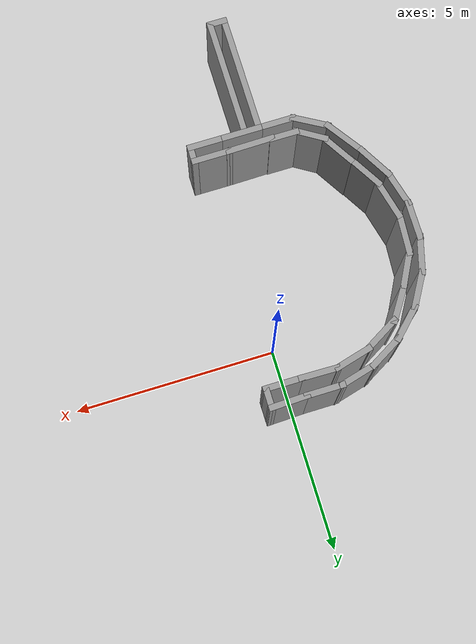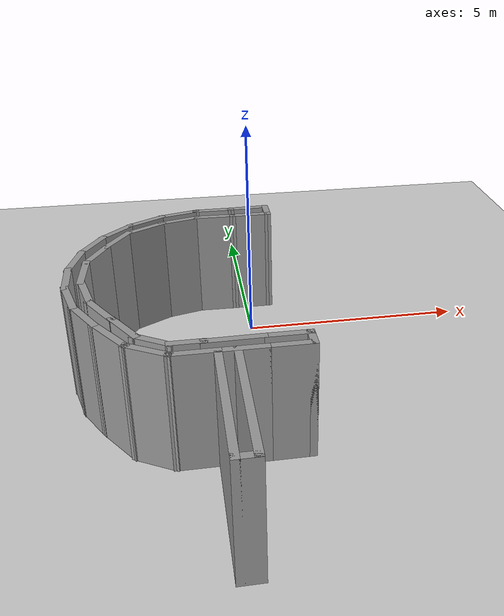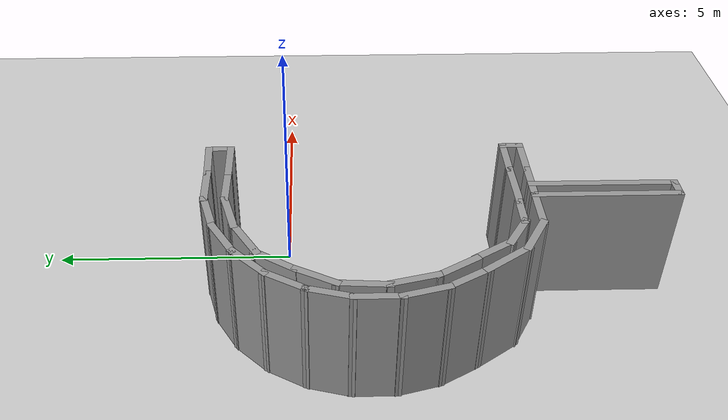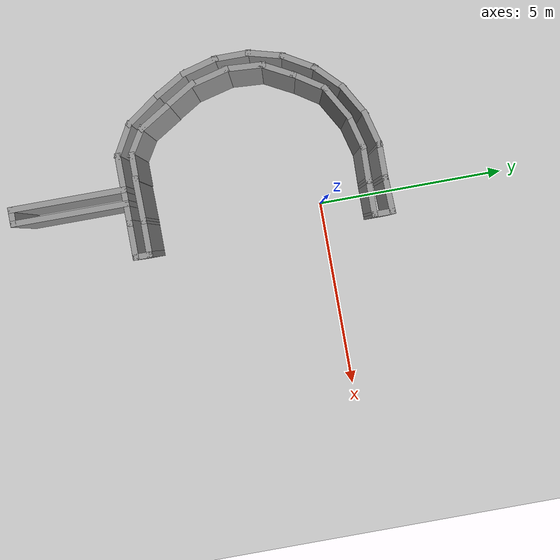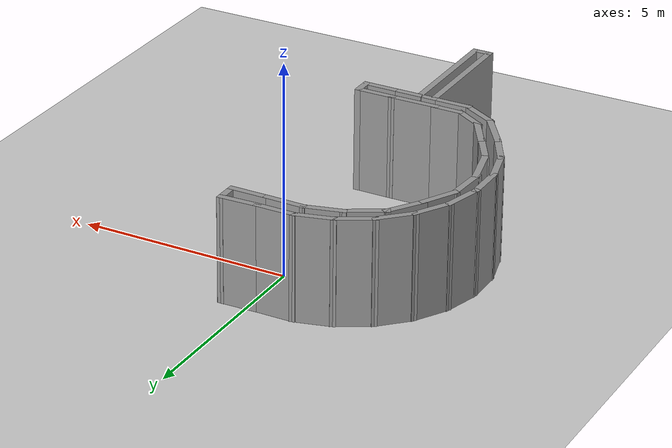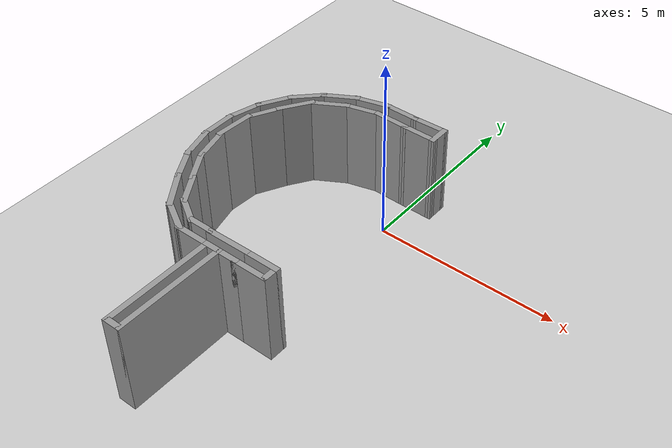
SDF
<?xml version="1.0" ?>
<sdf version="1.4">
  <world name="default">
    <!-- A global light source -->
    <include>
      <uri>model://sun</uri>
    </include>

    <!-- A ground plane -->
    <include>
      <uri>model://ground_plane</uri>
    </include>

    <include>
      <uri>model://model_wall</uri>
    </include>

  </world>
</sdf>

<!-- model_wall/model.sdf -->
<sdf version='1.7'>
  <model name='RI_C_Shape'>
    <pose>-1.67152 -3.04489 0 0 -0 0</pose>
    <link name='Wall_10'>
      <collision name='Wall_10_Collision'>
        <geometry>
          <box>
            <size>0.15 0.15 2.5</size>
          </box>
        </geometry>
        <pose>0 0 1.25 0 -0 0</pose>
      </collision>
      <visual name='Wall_10_Visual'>
        <pose>0 0 1.25 0 -0 0</pose>
        <geometry>
          <box>
            <size>0.15 0.15 2.5</size>
          </box>
        </geometry>
        <material>
          <script>
            <uri>file://media/materials/scripts/gazebo.material</uri>
            <name>Gazebo/Grey</name>
          </script>
          <ambient>1 1 1 1</ambient>
        </material>
        <meta>
          <layer>0</layer>
        </meta>
      </visual>
      <pose>0.558833 4.63649 0 0 -0 0</pose>
    </link>
    <link name='Wall_11'>
      <collision name='Wall_11_Collision'>
        <geometry>
          <box>
            <size>1 0.15 2.5</size>
          </box>
        </geometry>
        <pose>0 0 1.25 0 -0 0</pose>
      </collision>
      <visual name='Wall_11_Visual'>
        <pose>0 0 1.25 0 -0 0</pose>
        <geometry>
          <box>
            <size>1 0.15 2.5</size>
          </box>
        </geometry>
        <material>
          <script>
            <uri>file://media/materials/scripts/gazebo.material</uri>
            <name>Gazebo/Grey</name>
          </script>
          <ambient>1 1 1 1</ambient>
        </material>
        <meta>
          <layer>0</layer>
        </meta>
      </visual>
      <pose>0.148314 4.52649 0 0 -0 -2.87979</pose>
    </link>
    <link name='Wall_12'>
      <collision name='Wall_12_Collision'>
        <geometry>
          <box>
            <size>1 0.15 2.5</size>
          </box>
        </geometry>
        <pose>0 0 1.25 0 -0 0</pose>
      </collision>
      <visual name='Wall_12_Visual'>
        <pose>0 0 1.25 0 -0 0</pose>
        <geometry>
          <box>
            <size>1 0.15 2.5</size>
          </box>
        </geometry>
        <material>
          <script>
            <uri>file://media/materials/scripts/gazebo.material</uri>
            <name>Gazebo/Grey</name>
          </script>
          <ambient>1 1 1 1</ambient>
        </material>
        <meta>
          <layer>0</layer>
        </meta>
      </visual>
      <pose>-0.630265 4.20399 0 0 -0 -2.61799</pose>
    </link>
    <link name='Wall_13'>
      <collision name='Wall_13_Collision'>
        <geometry>
          <box>
            <size>1 0.15 2.5</size>
          </box>
        </geometry>
        <pose>0 0 1.25 0 -0 0</pose>
      </collision>
      <visual name='Wall_13_Visual'>
        <pose>0 0 1.25 0 -0 0</pose>
        <geometry>
          <box>
            <size>1 0.15 2.5</size>
          </box>
        </geometry>
        <material>
          <script>
            <uri>file://media/materials/scripts/gazebo.material</uri>
            <name>Gazebo/Grey</name>
          </script>
          <ambient>1 1 1 1</ambient>
        </material>
        <meta>
          <layer>0</layer>
        </meta>
      </visual>
      <pose>-1.29885 3.69097 0 0 -0 -2.35619</pose>
    </link>
    <link name='Wall_14'>
      <collision name='Wall_14_Collision'>
        <geometry>
          <box>
            <size>1 0.15 2.5</size>
          </box>
        </geometry>
        <pose>0 0 1.25 0 -0 0</pose>
      </collision>
      <visual name='Wall_14_Visual'>
        <pose>0 0 1.25 0 -0 0</pose>
        <geometry>
          <box>
            <size>1 0.15 2.5</size>
          </box>
        </geometry>
        <material>
          <script>
            <uri>file://media/materials/scripts/gazebo.material</uri>
            <name>Gazebo/Grey</name>
          </script>
          <ambient>1 1 1 1</ambient>
        </material>
        <meta>
          <layer>0</layer>
        </meta>
      </visual>
      <pose>-1.81187 3.02239 0 0 -0 -2.0944</pose>
    </link>
    <link name='Wall_15'>
      <collision name='Wall_15_Collision'>
        <geometry>
          <box>
            <size>1 0.15 2.5</size>
          </box>
        </geometry>
        <pose>0 0 1.25 0 -0 0</pose>
      </collision>
      <visual name='Wall_15_Visual'>
        <pose>0 0 1.25 0 -0 0</pose>
        <geometry>
          <box>
            <size>1 0.15 2.5</size>
          </box>
        </geometry>
        <material>
          <script>
            <uri>file://media/materials/scripts/gazebo.material</uri>
            <name>Gazebo/Grey</name>
          </script>
          <ambient>1 1 1 1</ambient>
        </material>
        <meta>
          <layer>0</layer>
        </meta>
      </visual>
      <pose>-2.13436 2.24381 0 0 -0 -1.8326</pose>
    </link>
    <link name='Wall_16'>
      <collision name='Wall_16_Collision'>
        <geometry>
          <box>
            <size>1 0.15 2.5</size>
          </box>
        </geometry>
        <pose>0 0 1.25 0 -0 0</pose>
      </collision>
      <visual name='Wall_16_Visual'>
        <pose>0 0 1.25 0 -0 0</pose>
        <geometry>
          <box>
            <size>1 0.15 2.5</size>
          </box>
        </geometry>
        <material>
          <script>
            <uri>file://media/materials/scripts/gazebo.material</uri>
            <name>Gazebo/Grey</name>
          </script>
          <ambient>1 1 1 1</ambient>
        </material>
        <meta>
          <layer>0</layer>
        </meta>
      </visual>
      <pose>-2.24436 1.40829 0 0 -0 -1.5708</pose>
    </link>
    <link name='Wall_18'>
      <collision name='Wall_18_Collision'>
        <geometry>
          <box>
            <size>1 0.15 2.5</size>
          </box>
        </geometry>
        <pose>0 0 1.25 0 -0 0</pose>
      </collision>
      <visual name='Wall_18_Visual'>
        <pose>0 0 1.25 0 -0 0</pose>
        <geometry>
          <box>
            <size>1 0.15 2.5</size>
          </box>
        </geometry>
        <material>
          <script>
            <uri>file://media/materials/scripts/gazebo.material</uri>
            <name>Gazebo/Grey</name>
          </script>
          <ambient>1 1 1 1</ambient>
        </material>
        <meta>
          <layer>0</layer>
        </meta>
      </visual>
      <pose>-2.13436 0.572773 0 0 -0 -1.309</pose>
    </link>
    <link name='Wall_19'>
      <collision name='Wall_19_Collision'>
        <geometry>
          <box>
            <size>1 0.15 2.5</size>
          </box>
        </geometry>
        <pose>0 0 1.25 0 -0 0</pose>
      </collision>
      <visual name='Wall_19_Visual'>
        <pose>0 0 1.25 0 -0 0</pose>
        <geometry>
          <box>
            <size>1 0.15 2.5</size>
          </box>
        </geometry>
        <material>
          <script>
            <uri>file://media/materials/scripts/gazebo.material</uri>
            <name>Gazebo/Grey</name>
          </script>
          <ambient>1 1 1 1</ambient>
        </material>
        <meta>
          <layer>0</layer>
        </meta>
      </visual>
      <pose>-1.81187 -0.205806 0 0 -0 -1.0472</pose>
    </link>
    <link name='Wall_24'>
      <collision name='Wall_24_Collision'>
        <geometry>
          <box>
            <size>1 0.15 2.5</size>
          </box>
        </geometry>
        <pose>0 0 1.25 0 -0 0</pose>
      </collision>
      <visual name='Wall_24_Visual'>
        <pose>0 0 1.25 0 -0 0</pose>
        <geometry>
          <box>
            <size>1 0.15 2.5</size>
          </box>
        </geometry>
        <material>
          <script>
            <uri>file://media/materials/scripts/gazebo.material</uri>
            <name>Gazebo/Grey</name>
          </script>
          <ambient>1 1 1 1</ambient>
        </material>
        <meta>
          <layer>0</layer>
        </meta>
      </visual>
      <pose>0.983833 -1.8199 0 0 -0 0</pose>
    </link>
    <link name='Wall_27'>
      <collision name='Wall_27_Collision'>
        <geometry>
          <box>
            <size>1 0.15 2.5</size>
          </box>
        </geometry>
        <pose>0 0 1.25 0 -0 0</pose>
      </collision>
      <visual name='Wall_27_Visual'>
        <pose>0 0 1.25 0 -0 0</pose>
        <geometry>
          <box>
            <size>1 0.15 2.5</size>
          </box>
        </geometry>
        <material>
          <script>
            <uri>file://media/materials/scripts/gazebo.material</uri>
            <name>Gazebo/Grey</name>
          </script>
          <ambient>1 1 1 1</ambient>
        </material>
        <meta>
          <layer>0</layer>
        </meta>
      </visual>
      <pose>0.133833 -1.8199 0 0 -0 3.14159</pose>
    </link>
    <link name='Wall_28'>
      <collision name='Wall_28_Collision'>
        <geometry>
          <box>
            <size>1 0.15 2.5</size>
          </box>
        </geometry>
        <pose>0 0 1.25 0 -0 0</pose>
      </collision>
      <visual name='Wall_28_Visual'>
        <pose>0 0 1.25 0 -0 0</pose>
        <geometry>
          <box>
            <size>1 0.15 2.5</size>
          </box>
        </geometry>
        <material>
          <script>
            <uri>file://media/materials/scripts/gazebo.material</uri>
            <name>Gazebo/Grey</name>
          </script>
          <ambient>1 1 1 1</ambient>
        </material>
        <meta>
          <layer>0</layer>
        </meta>
      </visual>
      <pose>-0.659228 -1.6074 0 0 -0 2.61799</pose>
    </link>
    <link name='Wall_29'>
      <collision name='Wall_29_Collision'>
        <geometry>
          <box>
            <size>1.15069 0.15 2.5</size>
          </box>
        </geometry>
        <pose>0 0 1.25 0 -0 0</pose>
      </collision>
      <visual name='Wall_29_Visual'>
        <pose>0 0 1.25 0 -0 0</pose>
        <geometry>
          <box>
            <size>1.15069 0.15 2.5</size>
          </box>
        </geometry>
        <material>
          <script>
            <uri>file://media/materials/scripts/gazebo.material</uri>
            <name>Gazebo/Grey</name>
          </script>
          <ambient>1 1 1 1</ambient>
        </material>
        <meta>
          <layer>0</layer>
        </meta>
      </visual>
      <pose>-1.31333 -0.984386 0 0 -0 2.17935</pose>
    </link>
    <link name='Wall_31'>
      <collision name='Wall_31_Collision'>
        <geometry>
          <box>
            <size>1 0.15 2.5</size>
          </box>
        </geometry>
        <pose>0 0 1.25 0 -0 0</pose>
      </collision>
      <visual name='Wall_31_Visual'>
        <pose>0 0 1.25 0 -0 0</pose>
        <geometry>
          <box>
            <size>1 0.15 2.5</size>
          </box>
        </geometry>
        <material>
          <script>
            <uri>file://media/materials/scripts/gazebo.material</uri>
            <name>Gazebo/Grey</name>
          </script>
          <ambient>1 1 1 1</ambient>
        </material>
        <meta>
          <layer>0</layer>
        </meta>
      </visual>
      <pose>1.83383 -1.8199 0 0 -0 0</pose>
    </link>
    <link name='Wall_33'>
      <collision name='Wall_33_Collision'>
        <geometry>
          <box>
            <size>0.5 0.15 2.5</size>
          </box>
        </geometry>
        <pose>0 0 1.25 0 -0 0</pose>
      </collision>
      <visual name='Wall_33_Visual'>
        <pose>0 0 1.25 0 -0 0</pose>
        <geometry>
          <box>
            <size>0.5 0.15 2.5</size>
          </box>
        </geometry>
        <material>
          <script>
            <uri>file://media/materials/scripts/gazebo.material</uri>
            <name>Gazebo/Grey</name>
          </script>
          <ambient>1 1 1 1</ambient>
        </material>
        <meta>
          <layer>0</layer>
        </meta>
      </visual>
      <pose>2.25883 -1.6449 0 0 -0 1.5708</pose>
    </link>
    <link name='Wall_34'>
      <collision name='Wall_34_Collision'>
        <geometry>
          <box>
            <size>1 0.15 2.5</size>
          </box>
        </geometry>
        <pose>0 0 1.25 0 -0 0</pose>
      </collision>
      <visual name='Wall_34_Visual'>
        <pose>0 0 1.25 0 -0 0</pose>
        <geometry>
          <box>
            <size>1 0.15 2.5</size>
          </box>
        </geometry>
        <material>
          <script>
            <uri>file://media/materials/scripts/gazebo.material</uri>
            <name>Gazebo/Grey</name>
          </script>
          <ambient>1 1 1 1</ambient>
        </material>
        <meta>
          <layer>0</layer>
        </meta>
      </visual>
      <pose>1.83383 -1.4699 0 0 -0 3.14159</pose>
    </link>
    <link name='Wall_35'>
      <collision name='Wall_35_Collision'>
        <geometry>
          <box>
            <size>1.21546 0.15 2.5</size>
          </box>
        </geometry>
        <pose>0 0 1.25 0 -0 0</pose>
      </collision>
      <visual name='Wall_35_Visual'>
        <pose>0 0 1.25 0 -0 0</pose>
        <geometry>
          <box>
            <size>1.21546 0.15 2.5</size>
          </box>
        </geometry>
        <material>
          <script>
            <uri>file://media/materials/scripts/gazebo.material</uri>
            <name>Gazebo/Grey</name>
          </script>
          <ambient>1 1 1 1</ambient>
        </material>
        <meta>
          <layer>0</layer>
        </meta>
      </visual>
      <pose>0.876159 -1.47759 0 0 -0 -3.12716</pose>
    </link>
    <link name='Wall_36'>
      <collision name='Wall_36_Collision'>
        <geometry>
          <box>
            <size>0.75 0.15 2.5</size>
          </box>
        </geometry>
        <pose>0 0 1.25 0 -0 0</pose>
      </collision>
      <visual name='Wall_36_Visual'>
        <pose>0 0 1.25 0 -0 0</pose>
        <geometry>
          <box>
            <size>0.75 0.15 2.5</size>
          </box>
        </geometry>
        <material>
          <script>
            <uri>file://media/materials/scripts/gazebo.material</uri>
            <name>Gazebo/Grey</name>
          </script>
          <ambient>1 1 1 1</ambient>
        </material>
        <meta>
          <layer>0</layer>
        </meta>
      </visual>
      <pose>0.043485 -1.4699 0 0 -0 3.14159</pose>
    </link>
    <link name='Wall_44'>
      <collision name='Wall_44_Collision'>
        <geometry>
          <box>
            <size>0.87068 0.15 2.5</size>
          </box>
        </geometry>
        <pose>0 0 1.25 0 -0 0</pose>
      </collision>
      <visual name='Wall_44_Visual'>
        <pose>0 0 1.25 0 -0 0</pose>
        <geometry>
          <box>
            <size>0.87068 0.15 2.5</size>
          </box>
        </geometry>
        <material>
          <script>
            <uri>file://media/materials/scripts/gazebo.material</uri>
            <name>Gazebo/Grey</name>
          </script>
          <ambient>1 1 1 1</ambient>
        </material>
        <meta>
          <layer>0</layer>
        </meta>
      </visual>
      <pose>-0.563048 -1.29586 0 0 -0 2.58807</pose>
    </link>
    <link name='Wall_45'>
      <collision name='Wall_45_Collision'>
        <geometry>
          <box>
            <size>0.960365 0.15 2.5</size>
          </box>
        </geometry>
        <pose>0 0 1.25 0 -0 0</pose>
      </collision>
      <visual name='Wall_45_Visual'>
        <pose>0 0 1.25 0 -0 0</pose>
        <geometry>
          <box>
            <size>0.960365 0.15 2.5</size>
          </box>
        </geometry>
        <material>
          <script>
            <uri>file://media/materials/scripts/gazebo.material</uri>
            <name>Gazebo/Grey</name>
          </script>
          <ambient>1 1 1 1</ambient>
        </material>
        <meta>
          <layer>0</layer>
        </meta>
      </visual>
      <pose>-1.0667 -0.761444 0 0 -0 2.12287</pose>
    </link>
    <link name='Wall_48'>
      <collision name='Wall_48_Collision'>
        <geometry>
          <box>
            <size>1.00779 0.15 2.5</size>
          </box>
        </geometry>
        <pose>0 0 1.25 0 -0 0</pose>
      </collision>
      <visual name='Wall_48_Visual'>
        <pose>0 0 1.25 0 -0 0</pose>
        <geometry>
          <box>
            <size>1.00779 0.15 2.5</size>
          </box>
        </geometry>
        <material>
          <script>
            <uri>file://media/materials/scripts/gazebo.material</uri>
            <name>Gazebo/Grey</name>
          </script>
          <ambient>1 1 1 1</ambient>
        </material>
        <meta>
          <layer>0</layer>
        </meta>
      </visual>
      <pose>-1.51477 -0.048396 0 0 -0 2.10993</pose>
    </link>
    <link name='Wall_49'>
      <collision name='Wall_49_Collision'>
        <geometry>
          <box>
            <size>1.05957 0.15 2.5</size>
          </box>
        </geometry>
        <pose>0 0 1.25 0 -0 0</pose>
      </collision>
      <visual name='Wall_49_Visual'>
        <pose>0 0 1.25 0 -0 0</pose>
        <geometry>
          <box>
            <size>1.05957 0.15 2.5</size>
          </box>
        </geometry>
        <material>
          <script>
            <uri>file://media/materials/scripts/gazebo.material</uri>
            <name>Gazebo/Grey</name>
          </script>
          <ambient>1 1 1 1</ambient>
        </material>
        <meta>
          <layer>0</layer>
        </meta>
      </visual>
      <pose>-1.82958 0.760947 0 0 -0 1.81509</pose>
    </link>
    <link name='Wall_51'>
      <collision name='Wall_51_Collision'>
        <geometry>
          <box>
            <size>1.0943 0.15 2.5</size>
          </box>
        </geometry>
        <pose>0 0 1.25 0 -0 0</pose>
      </collision>
      <visual name='Wall_51_Visual'>
        <pose>0 0 1.25 0 -0 0</pose>
        <geometry>
          <box>
            <size>1.0943 0.15 2.5</size>
          </box>
        </geometry>
        <material>
          <script>
            <uri>file://media/materials/scripts/gazebo.material</uri>
            <name>Gazebo/Grey</name>
          </script>
          <ambient>1 1 1 1</ambient>
        </material>
        <meta>
          <layer>0</layer>
        </meta>
      </visual>
      <pose>-1.9242 1.65799 0 0 -0 1.50559</pose>
    </link>
    <link name='Wall_52'>
      <collision name='Wall_52_Collision'>
        <geometry>
          <box>
            <size>0.964246 0.15 2.5</size>
          </box>
        </geometry>
        <pose>0 0 1.25 0 -0 0</pose>
      </collision>
      <visual name='Wall_52_Visual'>
        <pose>0 0 1.25 0 -0 0</pose>
        <geometry>
          <box>
            <size>0.964246 0.15 2.5</size>
          </box>
        </geometry>
        <material>
          <script>
            <uri>file://media/materials/scripts/gazebo.material</uri>
            <name>Gazebo/Grey</name>
          </script>
          <ambient>1 1 1 1</ambient>
        </material>
        <meta>
          <layer>0</layer>
        </meta>
      </visual>
      <pose>-1.704 2.47413 0 0 -0 1.08684</pose>
    </link>
    <link name='Wall_53'>
      <collision name='Wall_53_Collision'>
        <geometry>
          <box>
            <size>1.01107 0.15 2.5</size>
          </box>
        </geometry>
        <pose>0 0 1.25 0 -0 0</pose>
      </collision>
      <visual name='Wall_53_Visual'>
        <pose>0 0 1.25 0 -0 0</pose>
        <geometry>
          <box>
            <size>1.01107 0.15 2.5</size>
          </box>
        </geometry>
        <material>
          <script>
            <uri>file://media/materials/scripts/gazebo.material</uri>
            <name>Gazebo/Grey</name>
          </script>
          <ambient>1 1 1 1</ambient>
        </material>
        <meta>
          <layer>0</layer>
        </meta>
      </visual>
      <pose>-1.279 3.21025 0 0 -0 0.991826</pose>
    </link>
    <link name='Wall_55'>
      <collision name='Wall_55_Collision'>
        <geometry>
          <box>
            <size>1.05535 0.15 2.5</size>
          </box>
        </geometry>
        <pose>0 0 1.25 0 -0 0</pose>
      </collision>
      <visual name='Wall_55_Visual'>
        <pose>0 0 1.25 0 -0 0</pose>
        <geometry>
          <box>
            <size>1.05535 0.15 2.5</size>
          </box>
        </geometry>
        <material>
          <script>
            <uri>file://media/materials/scripts/gazebo.material</uri>
            <name>Gazebo/Grey</name>
          </script>
          <ambient>1 1 1 1</ambient>
        </material>
        <meta>
          <layer>0</layer>
        </meta>
      </visual>
      <pose>-0.652297 3.78312 0 0 -0 0.527541</pose>
    </link>
    <link name='Wall_56'>
      <collision name='Wall_56_Collision'>
        <geometry>
          <box>
            <size>1 0.15 2.5</size>
          </box>
        </geometry>
        <pose>0 0 1.25 0 -0 0</pose>
      </collision>
      <visual name='Wall_56_Visual'>
        <pose>0 0 1.25 0 -0 0</pose>
        <geometry>
          <box>
            <size>1 0.15 2.5</size>
          </box>
        </geometry>
        <material>
          <script>
            <uri>file://media/materials/scripts/gazebo.material</uri>
            <name>Gazebo/Grey</name>
          </script>
          <ambient>1 1 1 1</ambient>
        </material>
        <meta>
          <layer>0</layer>
        </meta>
      </visual>
      <pose>0.133973 4.121 0 0 -0 0.261799</pose>
    </link>
    <link name='Wall_57'>
      <collision name='Wall_57_Collision'>
        <geometry>
          <box>
            <size>1.00014 0.15 2.5</size>
          </box>
        </geometry>
        <pose>0 0 1.25 0 -0 0</pose>
      </collision>
      <visual name='Wall_57_Visual'>
        <pose>0 0 1.25 0 -0 0</pose>
        <geometry>
          <box>
            <size>1.00014 0.15 2.5</size>
          </box>
        </geometry>
        <material>
          <script>
            <uri>file://media/materials/scripts/gazebo.material</uri>
            <name>Gazebo/Grey</name>
          </script>
          <ambient>1 1 1 1</ambient>
        </material>
        <meta>
          <layer>0</layer>
        </meta>
      </visual>
      <pose>0.984874 4.22331 0 0 -0 -0.018094</pose>
    </link>
    <link name='Wall_60'>
      <collision name='Wall_60_Collision'>
        <geometry>
          <box>
            <size>1 0.15 2.5</size>
          </box>
        </geometry>
        <pose>0 0 1.25 0 -0 0</pose>
      </collision>
      <visual name='Wall_60_Visual'>
        <pose>0 0 1.25 0 -0 0</pose>
        <geometry>
          <box>
            <size>1 0.15 2.5</size>
          </box>
        </geometry>
        <material>
          <script>
            <uri>file://media/materials/scripts/gazebo.material</uri>
            <name>Gazebo/Grey</name>
          </script>
          <ambient>1 1 1 1</ambient>
        </material>
        <meta>
          <layer>0</layer>
        </meta>
      </visual>
      <pose>1.83383 4.65187 0 0 -0 0.036177</pose>
    </link>
    <link name='Wall_65'>
      <collision name='Wall_65_Collision'>
        <geometry>
          <box>
            <size>1 0.15 2.5</size>
          </box>
        </geometry>
        <pose>0 0 1.25 0 -0 0</pose>
      </collision>
      <visual name='Wall_65_Visual'>
        <pose>0 0 1.25 0 -0 0</pose>
        <geometry>
          <box>
            <size>1 0.15 2.5</size>
          </box>
        </geometry>
        <material>
          <script>
            <uri>file://media/materials/scripts/gazebo.material</uri>
            <name>Gazebo/Grey</name>
          </script>
          <ambient>1 1 1 1</ambient>
        </material>
        <meta>
          <layer>0</layer>
        </meta>
      </visual>
      <pose>1.83487 4.21561 0 0 -0 0</pose>
    </link>
    <link name='Wall_66'>
      <collision name='Wall_66_Collision'>
        <geometry>
          <box>
            <size>0.601637 0.15 2.5</size>
          </box>
        </geometry>
        <pose>0 0 1.25 0 -0 0</pose>
      </collision>
      <visual name='Wall_66_Visual'>
        <pose>0 0 1.25 0 -0 0</pose>
        <geometry>
          <box>
            <size>0.601637 0.15 2.5</size>
          </box>
        </geometry>
        <material>
          <script>
            <uri>file://media/materials/scripts/gazebo.material</uri>
            <name>Gazebo/Grey</name>
          </script>
          <ambient>1 1 1 1</ambient>
        </material>
        <meta>
          <layer>0</layer>
        </meta>
      </visual>
      <pose>2.25935 4.44143 0 0 -0 1.5731</pose>
    </link>
    <link name='Wall_71'>
      <collision name='Wall_71_Collision'>
        <geometry>
          <box>
            <size>3 0.15 2.5</size>
          </box>
        </geometry>
        <pose>0 0 1.25 0 -0 0</pose>
      </collision>
      <visual name='Wall_71_Visual'>
        <pose>0 0 1.25 0 -0 0</pose>
        <geometry>
          <box>
            <size>3 0.15 2.5</size>
          </box>
        </geometry>
        <material>
          <script>
            <uri>file://media/materials/scripts/gazebo.material</uri>
            <name>Gazebo/Grey</name>
          </script>
          <ambient>1 1 1 1</ambient>
        </material>
        <meta>
          <layer>0</layer>
        </meta>
      </visual>
      <pose>0.558833 -3.2449 0 0 -0 -1.5708</pose>
    </link>
    <link name='Wall_72'>
      <collision name='Wall_72_Collision'>
        <geometry>
          <box>
            <size>0.5 0.15 2.5</size>
          </box>
        </geometry>
        <pose>0 0 1.25 0 -0 0</pose>
      </collision>
      <visual name='Wall_72_Visual'>
        <pose>0 0 1.25 0 -0 0</pose>
        <geometry>
          <box>
            <size>0.5 0.15 2.5</size>
          </box>
        </geometry>
        <material>
          <script>
            <uri>file://media/materials/scripts/gazebo.material</uri>
            <name>Gazebo/Grey</name>
          </script>
          <ambient>1 1 1 1</ambient>
        </material>
        <meta>
          <layer>0</layer>
        </meta>
      </visual>
      <pose>0.733833 -4.6699 0 0 -0 0</pose>
    </link>
    <link name='Wall_73'>
      <collision name='Wall_73_Collision'>
        <geometry>
          <box>
            <size>3 0.15 2.5</size>
          </box>
        </geometry>
        <pose>0 0 1.25 0 -0 0</pose>
      </collision>
      <visual name='Wall_73_Visual'>
        <pose>0 0 1.25 0 -0 0</pose>
        <geometry>
          <box>
            <size>3 0.15 2.5</size>
          </box>
        </geometry>
        <material>
          <script>
            <uri>file://media/materials/scripts/gazebo.material</uri>
            <name>Gazebo/Grey</name>
          </script>
          <ambient>1 1 1 1</ambient>
        </material>
        <meta>
          <layer>0</layer>
        </meta>
      </visual>
      <pose>0.908833 -3.2449 0 0 -0 1.5708</pose>
    </link>
    <link name='Wall_9'>
      <collision name='Wall_9_Collision'>
        <geometry>
          <box>
            <size>1 0.15 2.5</size>
          </box>
        </geometry>
        <pose>0 0 1.25 0 -0 0</pose>
      </collision>
      <visual name='Wall_9_Visual'>
        <pose>0 0 1.25 0 -0 0</pose>
        <geometry>
          <box>
            <size>1 0.15 2.5</size>
          </box>
        </geometry>
        <material>
          <script>
            <uri>file://media/materials/scripts/gazebo.material</uri>
            <name>Gazebo/Grey</name>
          </script>
          <ambient>1 1 1 1</ambient>
        </material>
        <meta>
          <layer>0</layer>
        </meta>
      </visual>
      <pose>0.983833 4.63649 0 0 -0 3.14159</pose>
    </link>
    <static>1</static>
  </model>
</sdf>
